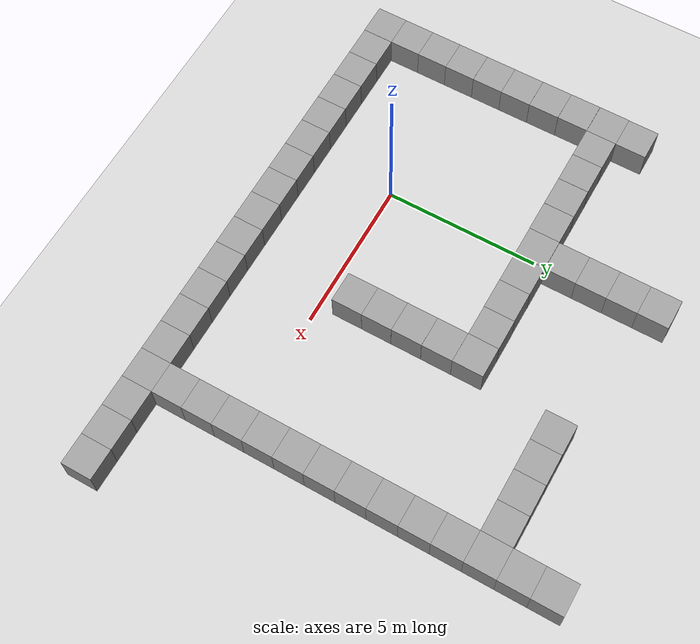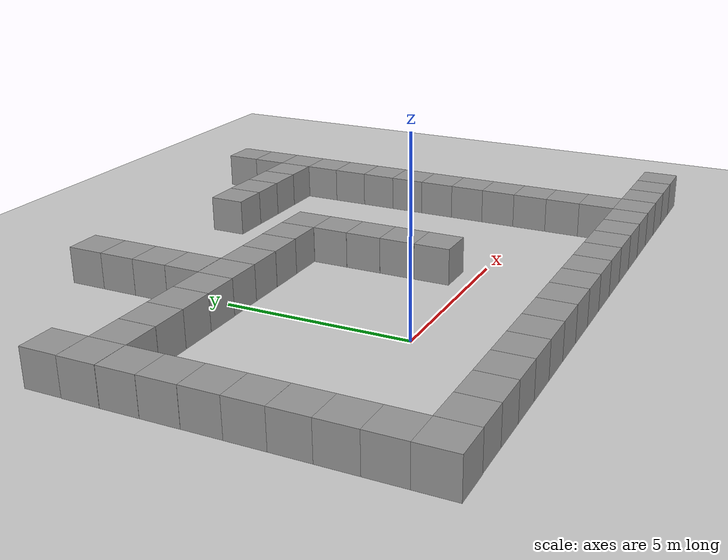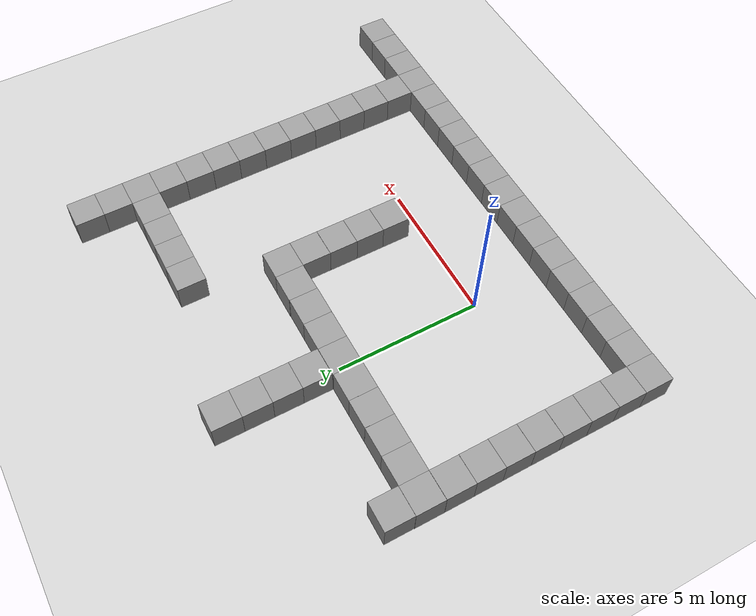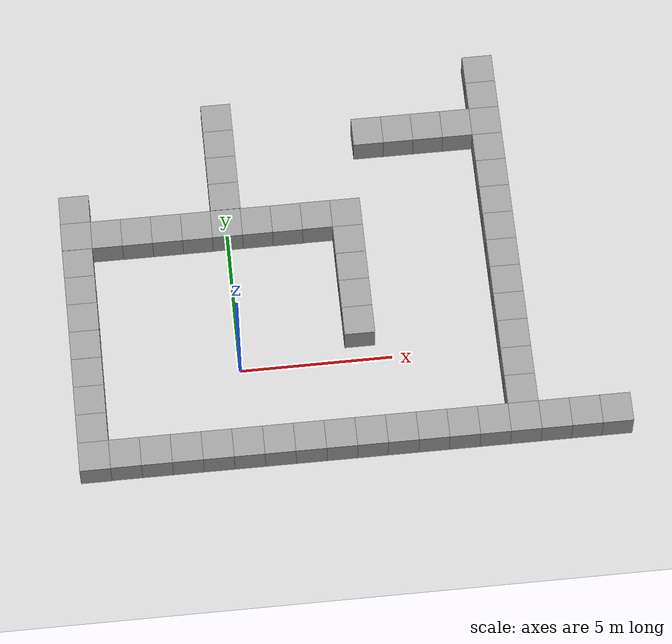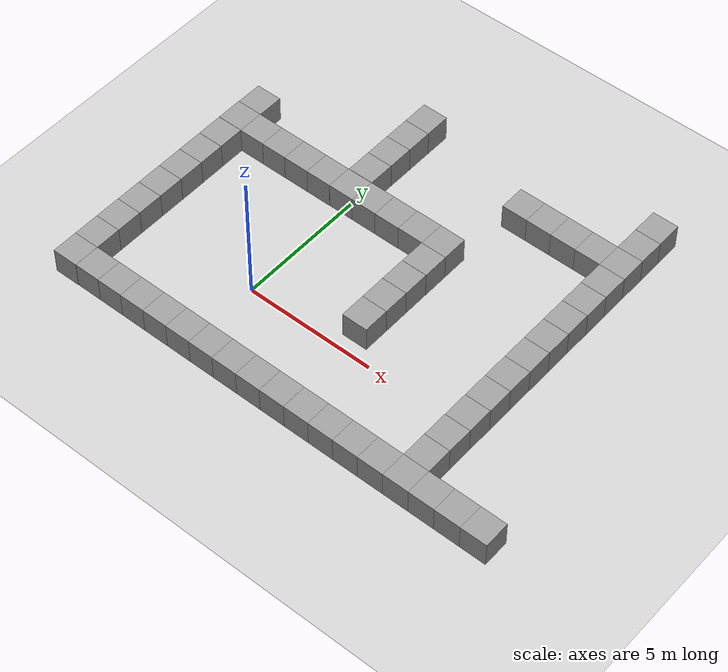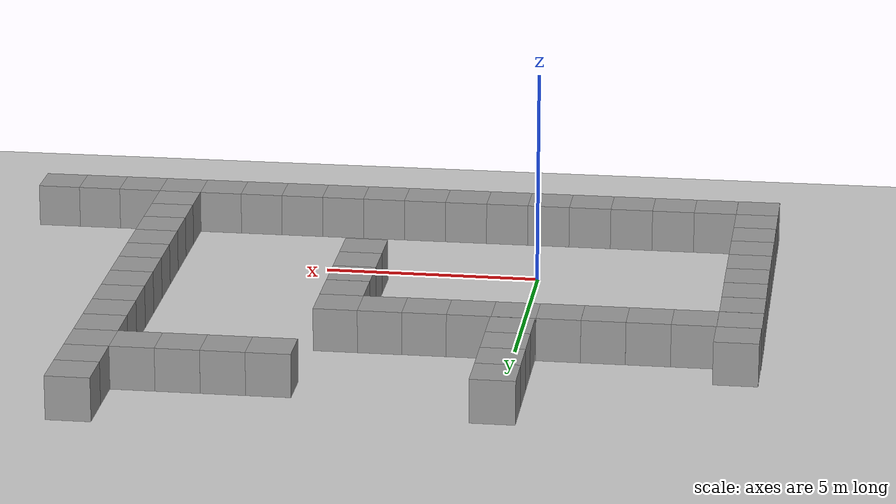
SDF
<sdf version="1.4">
 <world name="default">
  <light name="sun" type="directional">
   <pose>0 0 10 0 -0 0</pose>
   <diffuse>0.8 0.8 0.8 1</diffuse>
   <specular>0.2 0.2 0.2 1</specular>
   <attenuation>
    <range>1000</range>
    <constant>0.9</constant>
    <linear>0.01</linear>
    <quadratic>0.001</quadratic>
   </attenuation>
   <direction>-0.5 0.1 -0.9</direction>
  </light>
  <model name="ground_plane">
   <static>1</static>
   <link name="link">
    <collision name="collision">
     <geometry><plane><normal>0 0 1</normal><size>100 100</size></plane></geometry>
     <surface><friction><ode><mu>100</mu><mu2>50</mu2></ode></friction></surface>
    </collision>
    <visual name="visual">
     <cast_shadows>0</cast_shadows>
     <geometry><plane><normal>0 0 1</normal><size>100 100</size></plane></geometry>
     <material>
      <script><uri>file://media/materials/scripts/gazebo.material</uri><name>Gazebo/Grey</name></script>
     </material>
    </visual>
    <velocity_decay><linear>0</linear><angular>0</angular></velocity_decay>
   </link>
  </model>
  <physics type="ode">
   <max_step_size>0.001</max_step_size>
   <real_time_factor>1</real_time_factor>
   <real_time_update_rate>1000</real_time_update_rate>
   <gravity>0 0 -9.8</gravity>
  </physics>
  <scene><ambient>0.4 0.4 0.4 1</ambient><background>0.7 0.7 0.7 1</background><shadows>1</shadows></scene>
  <spherical_coordinates>
   <surface_model>EARTH_WGS84</surface_model>
   <latitude_deg>0</latitude_deg>
   <longitude_deg>0</longitude_deg>
   <elevation>0</elevation>
   <heading_deg>0</heading_deg>
  </spherical_coordinates>
  <model name="unit_box_1">
   <pose>-5.01661 4.99523 0.5 0 -0 0.000218</pose>
   <link name="link">
    <inertial>
     <mass>1</mass>
     <inertia><ixx>1</ixx><ixy>0</ixy><ixz>0</ixz><iyy>1</iyy><iyz>0</iyz><izz>1</izz></inertia>
    </inertial>
    <collision name="collision"><geometry><box><size>1 1 1</size></box></geometry></collision>
    <visual name="visual">
     <geometry><box><size>1 1 1</size></box></geometry>
     <material>
      <script><uri>file://media/materials/scripts/gazebo.material</uri><name>Gazebo/Grey</name></script>
     </material>
    </visual>
    <velocity_decay><linear>0</linear><angular>0</angular></velocity_decay>
   </link>
   <static>0</static>
  </model>
  <model name="unit_box_2">
   <pose>-4.01655 4.98972 0.5 0 -0 0.00031</pose>
   <link name="link">
    <inertial>
     <mass>1</mass>
     <inertia><ixx>1</ixx><ixy>0</ixy><ixz>0</ixz><iyy>1</iyy><iyz>0</iyz><izz>1</izz></inertia>
    </inertial>
    <collision name="collision"><geometry><box><size>1 1 1</size></box></geometry></collision>
    <visual name="visual">
     <geometry><box><size>1 1 1</size></box></geometry>
     <material>
      <script><uri>file://media/materials/scripts/gazebo.material</uri><name>Gazebo/Grey</name></script>
     </material>
    </visual>
    <velocity_decay><linear>0</linear><angular>0</angular></velocity_decay>
   </link>
   <static>0</static>
  </model>
  <model name="unit_box_3">
   <pose>-3.01647 4.98785 0.5 0 -0 0.000158</pose>
   <link name="link">
    <inertial>
     <mass>1</mass>
     <inertia><ixx>1</ixx><ixy>0</ixy><ixz>0</ixz><iyy>1</iyy><iyz>0</iyz><izz>1</izz></inertia>
    </inertial>
    <collision name="collision"><geometry><box><size>1 1 1</size></box></geometry></collision>
    <visual name="visual">
     <geometry><box><size>1 1 1</size></box></geometry>
     <material>
      <script><uri>file://media/materials/scripts/gazebo.material</uri><name>Gazebo/Grey</name></script>
     </material>
    </visual>
    <velocity_decay><linear>0</linear><angular>0</angular></velocity_decay>
   </link>
   <static>0</static>
  </model>
  <model name="unit_box_4">
   <pose>-2.01621 4.98917 0.5 0 0 -0.000282</pose>
   <link name="link">
    <inertial>
     <mass>1</mass>
     <inertia><ixx>1</ixx><ixy>0</ixy><ixz>0</ixz><iyy>1</iyy><iyz>0</iyz><izz>1</izz></inertia>
    </inertial>
    <collision name="collision"><geometry><box><size>1 1 1</size></box></geometry></collision>
    <visual name="visual">
     <geometry><box><size>1 1 1</size></box></geometry>
     <material>
      <script><uri>file://media/materials/scripts/gazebo.material</uri><name>Gazebo/Grey</name></script>
     </material>
    </visual>
    <velocity_decay><linear>0</linear><angular>0</angular></velocity_decay>
   </link>
   <static>0</static>
  </model>
  <model name="unit_box_5">
   <pose>-1.01609 4.98891 0.5 0 -0 -0.000471</pose>
   <link name="link">
    <inertial>
     <mass>1</mass>
     <inertia><ixx>1</ixx><ixy>0</ixy><ixz>0</ixz><iyy>1</iyy><iyz>0</iyz><izz>1</izz></inertia>
    </inertial>
    <collision name="collision"><geometry><box><size>1 1 1</size></box></geometry></collision>
    <visual name="visual">
     <geometry><box><size>1 1 1</size></box></geometry>
     <material>
      <script><uri>file://media/materials/scripts/gazebo.material</uri><name>Gazebo/Grey</name></script>
     </material>
    </visual>
    <velocity_decay><linear>0</linear><angular>0</angular></velocity_decay>
   </link>
   <static>0</static>
  </model>
  <model name="unit_box_6">
   <pose>-0.016065 4.99446 0.5 0 0 -0.000514</pose>
   <link name="link">
    <inertial>
     <mass>1</mass>
     <inertia><ixx>1</ixx><ixy>0</ixy><ixz>0</ixz><iyy>1</iyy><iyz>0</iyz><izz>1</izz></inertia>
    </inertial>
    <collision name="collision"><geometry><box><size>1 1 1</size></box></geometry></collision>
    <visual name="visual">
     <geometry><box><size>1 1 1</size></box></geometry>
     <material>
      <script><uri>file://media/materials/scripts/gazebo.material</uri><name>Gazebo/Grey</name></script>
     </material>
    </visual>
    <velocity_decay><linear>0</linear><angular>0</angular></velocity_decay>
   </link>
   <static>0</static>
  </model>
  <model name="unit_box_7">
   <pose>0.983971 4.99543 0.5 0 0 -0.000515</pose>
   <link name="link">
    <inertial>
     <mass>1</mass>
     <inertia><ixx>1</ixx><ixy>0</ixy><ixz>0</ixz><iyy>1</iyy><iyz>0</iyz><izz>1</izz></inertia>
    </inertial>
    <collision name="collision"><geometry><box><size>1 1 1</size></box></geometry></collision>
    <visual name="visual">
     <geometry><box><size>1 1 1</size></box></geometry>
     <material>
      <script><uri>file://media/materials/scripts/gazebo.material</uri><name>Gazebo/Grey</name></script>
     </material>
    </visual>
    <velocity_decay><linear>0</linear><angular>0</angular></velocity_decay>
   </link>
   <static>0</static>
  </model>
  <model name="unit_box_8">
   <pose>1.98409 4.99338 0.5 -0 -0 -0.000438</pose>
   <link name="link">
    <inertial>
     <mass>1</mass>
     <inertia><ixx>1</ixx><ixy>0</ixy><ixz>0</ixz><iyy>1</iyy><iyz>0</iyz><izz>1</izz></inertia>
    </inertial>
    <collision name="collision"><geometry><box><size>1 1 1</size></box></geometry></collision>
    <visual name="visual">
     <geometry><box><size>1 1 1</size></box></geometry>
     <material>
      <script><uri>file://media/materials/scripts/gazebo.material</uri><name>Gazebo/Grey</name></script>
     </material>
    </visual>
    <velocity_decay><linear>0</linear><angular>0</angular></velocity_decay>
   </link>
   <static>0</static>
  </model>
  <model name="unit_box_9">
   <pose>2.9843 5.00044 0.5 0 0 -0.000369</pose>
   <link name="link">
    <inertial>
     <mass>1</mass>
     <inertia><ixx>1</ixx><ixy>0</ixy><ixz>0</ixz><iyy>1</iyy><iyz>0</iyz><izz>1</izz></inertia>
    </inertial>
    <collision name="collision"><geometry><box><size>1 1 1</size></box></geometry></collision>
    <visual name="visual">
     <geometry><box><size>1 1 1</size></box></geometry>
     <material>
      <script><uri>file://media/materials/scripts/gazebo.material</uri><name>Gazebo/Grey</name></script>
     </material>
    </visual>
    <velocity_decay><linear>0</linear><angular>0</angular></velocity_decay>
   </link>
   <static>0</static>
  </model>
  <model name="unit_box_10">
   <pose>3.98435 4.99845 0.5 -0 -0 -0.000461</pose>
   <link name="link">
    <inertial>
     <mass>1</mass>
     <inertia><ixx>1</ixx><ixy>0</ixy><ixz>0</ixz><iyy>1</iyy><iyz>0</iyz><izz>1</izz></inertia>
    </inertial>
    <collision name="collision"><geometry><box><size>1 1 1</size></box></geometry></collision>
    <visual name="visual">
     <geometry><box><size>1 1 1</size></box></geometry>
     <material>
      <script><uri>file://media/materials/scripts/gazebo.material</uri><name>Gazebo/Grey</name></script>
     </material>
    </visual>
    <velocity_decay><linear>0</linear><angular>0</angular></velocity_decay>
   </link>
   <static>0</static>
  </model>
  <model name="unit_box_11">
   <pose>3.98561 3.99843 0.5 0 0 -0.00046</pose>
   <link name="link">
    <inertial>
     <mass>1</mass>
     <inertia><ixx>1</ixx><ixy>0</ixy><ixz>0</ixz><iyy>1</iyy><iyz>0</iyz><izz>1</izz></inertia>
    </inertial>
    <collision name="collision"><geometry><box><size>1 1 1</size></box></geometry></collision>
    <visual name="visual">
     <geometry><box><size>1 1 1</size></box></geometry>
     <material>
      <script><uri>file://media/materials/scripts/gazebo.material</uri><name>Gazebo/Grey</name></script>
     </material>
    </visual>
    <velocity_decay><linear>0</linear><angular>0</angular></velocity_decay>
   </link>
   <static>0</static>
  </model>
  <model name="unit_box_12">
   <pose>3.98357 2.99635 0.5 0 -0 -0.000581</pose>
   <link name="link">
    <inertial>
     <mass>1</mass>
     <inertia><ixx>1</ixx><ixy>0</ixy><ixz>0</ixz><iyy>1</iyy><iyz>0</iyz><izz>1</izz></inertia>
    </inertial>
    <collision name="collision"><geometry><box><size>1 1 1</size></box></geometry></collision>
    <visual name="visual">
     <geometry><box><size>1 1 1</size></box></geometry>
     <material>
      <script><uri>file://media/materials/scripts/gazebo.material</uri><name>Gazebo/Grey</name></script>
     </material>
    </visual>
    <velocity_decay><linear>0</linear><angular>0</angular></velocity_decay>
   </link>
   <static>0</static>
  </model>
  <model name="unit_box_13">
   <pose>3.98484 1.99635 0.5 0 -0 -0.000581</pose>
   <link name="link">
    <inertial>
     <mass>1</mass>
     <inertia><ixx>1</ixx><ixy>0</ixy><ixz>0</ixz><iyy>1</iyy><iyz>0</iyz><izz>1</izz></inertia>
    </inertial>
    <collision name="collision"><geometry><box><size>1 1 1</size></box></geometry></collision>
    <visual name="visual">
     <geometry><box><size>1 1 1</size></box></geometry>
     <material>
      <script><uri>file://media/materials/scripts/gazebo.material</uri><name>Gazebo/Grey</name></script>
     </material>
    </visual>
    <velocity_decay><linear>0</linear><angular>0</angular></velocity_decay>
   </link>
   <static>0</static>
  </model>
  <model name="unit_box_14">
   <pose>3.98502 0.996332 0.5 0 -1e-06 -0.000611</pose>
   <link name="link">
    <inertial>
     <mass>1</mass>
     <inertia><ixx>1</ixx><ixy>0</ixy><ixz>0</ixz><iyy>1</iyy><iyz>0</iyz><izz>1</izz></inertia>
    </inertial>
    <collision name="collision"><geometry><box><size>1 1 1</size></box></geometry></collision>
    <visual name="visual">
     <geometry><box><size>1 1 1</size></box></geometry>
     <material>
      <script><uri>file://media/materials/scripts/gazebo.material</uri><name>Gazebo/Grey</name></script>
     </material>
    </visual>
    <velocity_decay><linear>0</linear><angular>0</angular></velocity_decay>
   </link>
   <static>0</static>
  </model>
  <model name="unit_box_15">
   <pose>-0.999929 -2.99994 0.5 -0 -0 -4.9e-05</pose>
   <link name="link">
    <inertial>
     <mass>1</mass>
     <inertia><ixx>1</ixx><ixy>0</ixy><ixz>0</ixz><iyy>1</iyy><iyz>0</iyz><izz>1</izz></inertia>
    </inertial>
    <collision name="collision"><geometry><box><size>1 1 1</size></box></geometry></collision>
    <visual name="visual">
     <geometry><box><size>1 1 1</size></box></geometry>
     <material>
      <script><uri>file://media/materials/scripts/gazebo.material</uri><name>Gazebo/Grey</name></script>
     </material>
    </visual>
    <velocity_decay><linear>0</linear><angular>0</angular></velocity_decay>
   </link>
   <static>0</static>
  </model>
  <model name="unit_box_16">
   <pose>7.5e-05 -2.99995 0.5 0 0 -4.4e-05</pose>
   <link name="link">
    <inertial>
     <mass>1</mass>
     <inertia><ixx>1</ixx><ixy>0</ixy><ixz>0</ixz><iyy>1</iyy><iyz>0</iyz><izz>1</izz></inertia>
    </inertial>
    <collision name="collision"><geometry><box><size>1 1 1</size></box></geometry></collision>
    <visual name="visual">
     <geometry><box><size>1 1 1</size></box></geometry>
     <material>
      <script><uri>file://media/materials/scripts/gazebo.material</uri><name>Gazebo/Grey</name></script>
     </material>
    </visual>
    <velocity_decay><linear>0</linear><angular>0</angular></velocity_decay>
   </link>
   <static>0</static>
  </model>
  <model name="unit_box_17">
   <pose>1.00008 -2.99995 0.5 0 -0 -2.8e-05</pose>
   <link name="link">
    <inertial>
     <mass>1</mass>
     <inertia><ixx>1</ixx><ixy>0</ixy><ixz>0</ixz><iyy>1</iyy><iyz>0</iyz><izz>1</izz></inertia>
    </inertial>
    <collision name="collision"><geometry><box><size>1 1 1</size></box></geometry></collision>
    <visual name="visual">
     <geometry><box><size>1 1 1</size></box></geometry>
     <material>
      <script><uri>file://media/materials/scripts/gazebo.material</uri><name>Gazebo/Grey</name></script>
     </material>
    </visual>
    <velocity_decay><linear>0</linear><angular>0</angular></velocity_decay>
   </link>
   <static>0</static>
  </model>
  <model name="unit_box_18">
   <pose>2.00009 -2.99997 0.5 -0 -0 -2.5e-05</pose>
   <link name="link">
    <inertial>
     <mass>1</mass>
     <inertia><ixx>1</ixx><ixy>0</ixy><ixz>0</ixz><iyy>1</iyy><iyz>0</iyz><izz>1</izz></inertia>
    </inertial>
    <collision name="collision"><geometry><box><size>1 1 1</size></box></geometry></collision>
    <visual name="visual">
     <geometry><box><size>1 1 1</size></box></geometry>
     <material>
      <script><uri>file://media/materials/scripts/gazebo.material</uri><name>Gazebo/Grey</name></script>
     </material>
    </visual>
    <velocity_decay><linear>0</linear><angular>0</angular></velocity_decay>
   </link>
   <static>0</static>
  </model>
  <model name="unit_box_19">
   <pose>3.00009 -2.99992 0.5 0 0 -2.2e-05</pose>
   <link name="link">
    <inertial>
     <mass>1</mass>
     <inertia><ixx>1</ixx><ixy>0</ixy><ixz>0</ixz><iyy>1</iyy><iyz>0</iyz><izz>1</izz></inertia>
    </inertial>
    <collision name="collision"><geometry><box><size>1 1 1</size></box></geometry></collision>
    <visual name="visual">
     <geometry><box><size>1 1 1</size></box></geometry>
     <material>
      <script><uri>file://media/materials/scripts/gazebo.material</uri><name>Gazebo/Grey</name></script>
     </material>
    </visual>
    <velocity_decay><linear>0</linear><angular>0</angular></velocity_decay>
   </link>
   <static>0</static>
  </model>
  <model name="unit_box_20">
   <pose>4.00009 -2.99994 0.5 0 0 -2.3e-05</pose>
   <link name="link">
    <inertial>
     <mass>1</mass>
     <inertia><ixx>1</ixx><ixy>0</ixy><ixz>0</ixz><iyy>1</iyy><iyz>0</iyz><izz>1</izz></inertia>
    </inertial>
    <collision name="collision"><geometry><box><size>1 1 1</size></box></geometry></collision>
    <visual name="visual">
     <geometry><box><size>1 1 1</size></box></geometry>
     <material>
      <script><uri>file://media/materials/scripts/gazebo.material</uri><name>Gazebo/Grey</name></script>
     </material>
    </visual>
    <velocity_decay><linear>0</linear><angular>0</angular></velocity_decay>
   </link>
   <static>0</static>
  </model>
  <model name="unit_box_21">
   <pose>5.00009 -2.99994 0.5 -0 -0 -1.7e-05</pose>
   <link name="link">
    <inertial>
     <mass>1</mass>
     <inertia><ixx>1</ixx><ixy>0</ixy><ixz>0</ixz><iyy>1</iyy><iyz>0</iyz><izz>1</izz></inertia>
    </inertial>
    <collision name="collision"><geometry><box><size>1 1 1</size></box></geometry></collision>
    <visual name="visual">
     <geometry><box><size>1 1 1</size></box></geometry>
     <material>
      <script><uri>file://media/materials/scripts/gazebo.material</uri><name>Gazebo/Grey</name></script>
     </material>
    </visual>
    <velocity_decay><linear>0</linear><angular>0</angular></velocity_decay>
   </link>
   <static>0</static>
  </model>
  <model name="unit_box_22">
   <pose>6.00009 -2.99998 0.5 0 0 -1.7e-05</pose>
   <link name="link">
    <inertial>
     <mass>1</mass>
     <inertia><ixx>1</ixx><ixy>0</ixy><ixz>0</ixz><iyy>1</iyy><iyz>0</iyz><izz>1</izz></inertia>
    </inertial>
    <collision name="collision"><geometry><box><size>1 1 1</size></box></geometry></collision>
    <visual name="visual">
     <geometry><box><size>1 1 1</size></box></geometry>
     <material>
      <script><uri>file://media/materials/scripts/gazebo.material</uri><name>Gazebo/Grey</name></script>
     </material>
    </visual>
    <velocity_decay><linear>0</linear><angular>0</angular></velocity_decay>
   </link>
   <static>0</static>
  </model>
  <model name="unit_box_23">
   <pose>7.00009 -2.99996 0.5 0 -0 -1.7e-05</pose>
   <link name="link">
    <inertial>
     <mass>1</mass>
     <inertia><ixx>1</ixx><ixy>0</ixy><ixz>0</ixz><iyy>1</iyy><iyz>0</iyz><izz>1</izz></inertia>
    </inertial>
    <collision name="collision"><geometry><box><size>1 1 1</size></box></geometry></collision>
    <visual name="visual">
     <geometry><box><size>1 1 1</size></box></geometry>
     <material>
      <script><uri>file://media/materials/scripts/gazebo.material</uri><name>Gazebo/Grey</name></script>
     </material>
    </visual>
    <velocity_decay><linear>0</linear><angular>0</angular></velocity_decay>
   </link>
   <static>0</static>
  </model>
  <model name="unit_box_24">
   <pose>8.00009 -3 0.5 0 -0 -1.5e-05</pose>
   <link name="link">
    <inertial>
     <mass>1</mass>
     <inertia><ixx>1</ixx><ixy>0</ixy><ixz>0</ixz><iyy>1</iyy><iyz>0</iyz><izz>1</izz></inertia>
    </inertial>
    <collision name="collision"><geometry><box><size>1 1 1</size></box></geometry></collision>
    <visual name="visual">
     <geometry><box><size>1 1 1</size></box></geometry>
     <material>
      <script><uri>file://media/materials/scripts/gazebo.material</uri><name>Gazebo/Grey</name></script>
     </material>
    </visual>
    <velocity_decay><linear>0</linear><angular>0</angular></velocity_decay>
   </link>
   <static>0</static>
  </model>
  <model name="unit_box_25">
   <pose>9.0001 -3.00001 0.5 -0 -0 -1.3e-05</pose>
   <link name="link">
    <inertial>
     <mass>1</mass>
     <inertia><ixx>1</ixx><ixy>0</ixy><ixz>0</ixz><iyy>1</iyy><iyz>0</iyz><izz>1</izz></inertia>
    </inertial>
    <collision name="collision"><geometry><box><size>1 1 1</size></box></geometry></collision>
    <visual name="visual">
     <geometry><box><size>1 1 1</size></box></geometry>
     <material>
      <script><uri>file://media/materials/scripts/gazebo.material</uri><name>Gazebo/Grey</name></script>
     </material>
    </visual>
    <velocity_decay><linear>0</linear><angular>0</angular></velocity_decay>
   </link>
   <static>0</static>
  </model>
  <model name="unit_box_26">
   <pose>9.00001 -2.00001 0.5 0 -0 -1e-05</pose>
   <link name="link">
    <inertial>
     <mass>1</mass>
     <inertia><ixx>1</ixx><ixy>0</ixy><ixz>0</ixz><iyy>1</iyy><iyz>0</iyz><izz>1</izz></inertia>
    </inertial>
    <collision name="collision"><geometry><box><size>1 1 1</size></box></geometry></collision>
    <visual name="visual">
     <geometry><box><size>1 1 1</size></box></geometry>
     <material>
      <script><uri>file://media/materials/scripts/gazebo.material</uri><name>Gazebo/Grey</name></script>
     </material>
    </visual>
    <velocity_decay><linear>0</linear><angular>0</angular></velocity_decay>
   </link>
   <static>0</static>
  </model>
  <model name="unit_box_27">
   <pose>8.99999 -1.00001 0.5 0 0 -1e-05</pose>
   <link name="link">
    <inertial>
     <mass>1</mass>
     <inertia><ixx>1</ixx><ixy>0</ixy><ixz>0</ixz><iyy>1</iyy><iyz>0</iyz><izz>1</izz></inertia>
    </inertial>
    <collision name="collision"><geometry><box><size>1 1 1</size></box></geometry></collision>
    <visual name="visual">
     <geometry><box><size>1 1 1</size></box></geometry>
     <material>
      <script><uri>file://media/materials/scripts/gazebo.material</uri><name>Gazebo/Grey</name></script>
     </material>
    </visual>
    <velocity_decay><linear>0</linear><angular>0</angular></velocity_decay>
   </link>
   <static>0</static>
  </model>
  <model name="unit_box_28">
   <pose>8.99997 -8e-06 0.5 0 0 -9e-06</pose>
   <link name="link">
    <inertial>
     <mass>1</mass>
     <inertia><ixx>1</ixx><ixy>0</ixy><ixz>0</ixz><iyy>1</iyy><iyz>0</iyz><izz>1</izz></inertia>
    </inertial>
    <collision name="collision"><geometry><box><size>1 1 1</size></box></geometry></collision>
    <visual name="visual">
     <geometry><box><size>1 1 1</size></box></geometry>
     <material>
      <script><uri>file://media/materials/scripts/gazebo.material</uri><name>Gazebo/Grey</name></script>
     </material>
    </visual>
    <velocity_decay><linear>0</linear><angular>0</angular></velocity_decay>
   </link>
   <static>0</static>
  </model>
  <model name="unit_box_29">
   <pose>8.99997 0.999996 0.5 0 0 -7e-06</pose>
   <link name="link">
    <inertial>
     <mass>1</mass>
     <inertia><ixx>1</ixx><ixy>0</ixy><ixz>0</ixz><iyy>1</iyy><iyz>0</iyz><izz>1</izz></inertia>
    </inertial>
    <collision name="collision"><geometry><box><size>1 1 1</size></box></geometry></collision>
    <visual name="visual">
     <geometry><box><size>1 1 1</size></box></geometry>
     <material>
      <script><uri>file://media/materials/scripts/gazebo.material</uri><name>Gazebo/Grey</name></script>
     </material>
    </visual>
    <velocity_decay><linear>0</linear><angular>0</angular></velocity_decay>
   </link>
   <static>0</static>
  </model>
  <model name="unit_box_30">
   <pose>8.99998 2 0.5 0 0 -7e-06</pose>
   <link name="link">
    <inertial>
     <mass>1</mass>
     <inertia><ixx>1</ixx><ixy>0</ixy><ixz>0</ixz><iyy>1</iyy><iyz>0</iyz><izz>1</izz></inertia>
    </inertial>
    <collision name="collision"><geometry><box><size>1 1 1</size></box></geometry></collision>
    <visual name="visual">
     <geometry><box><size>1 1 1</size></box></geometry>
     <material>
      <script><uri>file://media/materials/scripts/gazebo.material</uri><name>Gazebo/Grey</name></script>
     </material>
    </visual>
    <velocity_decay><linear>0</linear><angular>0</angular></velocity_decay>
   </link>
   <static>0</static>
  </model>
  <model name="unit_box_31">
   <pose>8.99998 3 0.5 0 -0 -5e-06</pose>
   <link name="link">
    <inertial>
     <mass>1</mass>
     <inertia><ixx>1</ixx><ixy>0</ixy><ixz>0</ixz><iyy>1</iyy><iyz>0</iyz><izz>1</izz></inertia>
    </inertial>
    <collision name="collision"><geometry><box><size>1 1 1</size></box></geometry></collision>
    <visual name="visual">
     <geometry><box><size>1 1 1</size></box></geometry>
     <material>
      <script><uri>file://media/materials/scripts/gazebo.material</uri><name>Gazebo/Grey</name></script>
     </material>
    </visual>
    <velocity_decay><linear>0</linear><angular>0</angular></velocity_decay>
   </link>
   <static>0</static>
  </model>
  <model name="unit_box_32">
   <pose>8.99999 4 0.5 -0 -0 -5e-06</pose>
   <link name="link">
    <inertial>
     <mass>1</mass>
     <inertia><ixx>1</ixx><ixy>0</ixy><ixz>0</ixz><iyy>1</iyy><iyz>0</iyz><izz>1</izz></inertia>
    </inertial>
    <collision name="collision"><geometry><box><size>1 1 1</size></box></geometry></collision>
    <visual name="visual">
     <geometry><box><size>1 1 1</size></box></geometry>
     <material>
      <script><uri>file://media/materials/scripts/gazebo.material</uri><name>Gazebo/Grey</name></script>
     </material>
    </visual>
    <velocity_decay><linear>0</linear><angular>0</angular></velocity_decay>
   </link>
   <static>0</static>
  </model>
  <model name="unit_box_33">
   <pose>9.00001 5 0.5 0 -0 -4e-06</pose>
   <link name="link">
    <inertial>
     <mass>1</mass>
     <inertia><ixx>1</ixx><ixy>0</ixy><ixz>0</ixz><iyy>1</iyy><iyz>0</iyz><izz>1</izz></inertia>
    </inertial>
    <collision name="collision"><geometry><box><size>1 1 1</size></box></geometry></collision>
    <visual name="visual">
     <geometry><box><size>1 1 1</size></box></geometry>
     <material>
      <script><uri>file://media/materials/scripts/gazebo.material</uri><name>Gazebo/Grey</name></script>
     </material>
    </visual>
    <velocity_decay><linear>0</linear><angular>0</angular></velocity_decay>
   </link>
   <static>0</static>
  </model>
  <model name="unit_box_34">
   <pose>9.00001 6 0.5 0 -0 -4e-06</pose>
   <link name="link">
    <inertial>
     <mass>1</mass>
     <inertia><ixx>1</ixx><ixy>0</ixy><ixz>0</ixz><iyy>1</iyy><iyz>0</iyz><izz>1</izz></inertia>
    </inertial>
    <collision name="collision"><geometry><box><size>1 1 1</size></box></geometry></collision>
    <visual name="visual">
     <geometry><box><size>1 1 1</size></box></geometry>
     <material>
      <script><uri>file://media/materials/scripts/gazebo.material</uri><name>Gazebo/Grey</name></script>
     </material>
    </visual>
    <velocity_decay><linear>0</linear><angular>0</angular></velocity_decay>
   </link>
   <static>0</static>
  </model>
  <model name="unit_box_35">
   <pose>10.0001 -2.99997 0.5 0 0 -1.3e-05</pose>
   <link name="link">
    <inertial>
     <mass>1</mass>
     <inertia><ixx>1</ixx><ixy>0</ixy><ixz>0</ixz><iyy>1</iyy><iyz>0</iyz><izz>1</izz></inertia>
    </inertial>
    <collision name="collision"><geometry><box><size>1 1 1</size></box></geometry></collision>
    <visual name="visual">
     <geometry><box><size>1 1 1</size></box></geometry>
     <material>
      <script><uri>file://media/materials/scripts/gazebo.material</uri><name>Gazebo/Grey</name></script>
     </material>
    </visual>
    <velocity_decay><linear>0</linear><angular>0</angular></velocity_decay>
   </link>
   <static>0</static>
  </model>
  <model name="unit_box_36">
   <pose>11.0001 -2.99998 0.5 0 0 -1.2e-05</pose>
   <link name="link">
    <inertial>
     <mass>1</mass>
     <inertia><ixx>1</ixx><ixy>0</ixy><ixz>0</ixz><iyy>1</iyy><iyz>0</iyz><izz>1</izz></inertia>
    </inertial>
    <collision name="collision"><geometry><box><size>1 1 1</size></box></geometry></collision>
    <visual name="visual">
     <geometry><box><size>1 1 1</size></box></geometry>
     <material>
      <script><uri>file://media/materials/scripts/gazebo.material</uri><name>Gazebo/Grey</name></script>
     </material>
    </visual>
    <velocity_decay><linear>0</linear><angular>0</angular></velocity_decay>
   </link>
   <static>0</static>
  </model>
  <model name="unit_box_37">
   <pose>12.0001 -2.99999 0.5 0 0 -1.1e-05</pose>
   <link name="link">
    <inertial>
     <mass>1</mass>
     <inertia><ixx>1</ixx><ixy>0</ixy><ixz>0</ixz><iyy>1</iyy><iyz>0</iyz><izz>1</izz></inertia>
    </inertial>
    <collision name="collision"><geometry><box><size>1 1 1</size></box></geometry></collision>
    <visual name="visual">
     <geometry><box><size>1 1 1</size></box></geometry>
     <material>
      <script><uri>file://media/materials/scripts/gazebo.material</uri><name>Gazebo/Grey</name></script>
     </material>
    </visual>
    <velocity_decay><linear>0</linear><angular>0</angular></velocity_decay>
   </link>
   <static>0</static>
  </model>
  <model name="unit_box_38">
   <pose>9.00001 7 0.5 0 -0 -3e-06</pose>
   <link name="link">
    <inertial>
     <mass>1</mass>
     <inertia><ixx>1</ixx><ixy>0</ixy><ixz>0</ixz><iyy>1</iyy><iyz>0</iyz><izz>1</izz></inertia>
    </inertial>
    <collision name="collision"><geometry><box><size>1 1 1</size></box></geometry></collision>
    <visual name="visual">
     <geometry><box><size>1 1 1</size></box></geometry>
     <material>
      <script><uri>file://media/materials/scripts/gazebo.material</uri><name>Gazebo/Grey</name></script>
     </material>
    </visual>
    <velocity_decay><linear>0</linear><angular>0</angular></velocity_decay>
   </link>
   <static>0</static>
  </model>
  <model name="unit_box_39">
   <pose>9 8 0.5 0 0 -3e-06</pose>
   <link name="link">
    <inertial>
     <mass>1</mass>
     <inertia><ixx>1</ixx><ixy>0</ixy><ixz>0</ixz><iyy>1</iyy><iyz>0</iyz><izz>1</izz></inertia>
    </inertial>
    <collision name="collision"><geometry><box><size>1 1 1</size></box></geometry></collision>
    <visual name="visual">
     <geometry><box><size>1 1 1</size></box></geometry>
     <material>
      <script><uri>file://media/materials/scripts/gazebo.material</uri><name>Gazebo/Grey</name></script>
     </material>
    </visual>
    <velocity_decay><linear>0</linear><angular>0</angular></velocity_decay>
   </link>
   <static>0</static>
  </model>
  <model name="unit_box_40">
   <pose>-5.01454 3.99136 0.5 0 -0 0.003743</pose>
   <link name="link">
    <inertial>
     <mass>1</mass>
     <inertia><ixx>1</ixx><ixy>0</ixy><ixz>0</ixz><iyy>1</iyy><iyz>0</iyz><izz>1</izz></inertia>
    </inertial>
    <collision name="collision"><geometry><box><size>1 1 1</size></box></geometry></collision>
    <visual name="visual">
     <geometry><box><size>1 1 1</size></box></geometry>
     <material>
      <script><uri>file://media/materials/scripts/gazebo.material</uri><name>Gazebo/Grey</name></script>
     </material>
    </visual>
    <velocity_decay><linear>0</linear><angular>0</angular></velocity_decay>
   </link>
   <static>0</static>
  </model>
  <model name="unit_box_41">
   <pose>-5.00802 2.99084 0.5 0 -0 0.00271</pose>
   <link name="link">
    <inertial>
     <mass>1</mass>
     <inertia><ixx>1</ixx><ixy>0</ixy><ixz>0</ixz><iyy>1</iyy><iyz>0</iyz><izz>1</izz></inertia>
    </inertial>
    <collision name="collision"><geometry><box><size>1 1 1</size></box></geometry></collision>
    <visual name="visual">
     <geometry><box><size>1 1 1</size></box></geometry>
     <material>
      <script><uri>file://media/materials/scripts/gazebo.material</uri><name>Gazebo/Grey</name></script>
     </material>
    </visual>
    <velocity_decay><linear>0</linear><angular>0</angular></velocity_decay>
   </link>
   <static>0</static>
  </model>
  <model name="unit_box_42">
   <pose>-5.00203 1.99061 0.5 0 -0 0.002237</pose>
   <link name="link">
    <inertial>
     <mass>1</mass>
     <inertia><ixx>1</ixx><ixy>0</ixy><ixz>0</ixz><iyy>1</iyy><iyz>0</iyz><izz>1</izz></inertia>
    </inertial>
    <collision name="collision"><geometry><box><size>1 1 1</size></box></geometry></collision>
    <visual name="visual">
     <geometry><box><size>1 1 1</size></box></geometry>
     <material>
      <script><uri>file://media/materials/scripts/gazebo.material</uri><name>Gazebo/Grey</name></script>
     </material>
    </visual>
    <velocity_decay><linear>0</linear><angular>0</angular></velocity_decay>
   </link>
   <static>0</static>
  </model>
  <model name="unit_box_43">
   <pose>-5.00167 0.990437 0.5 0 -0 0.00189</pose>
   <link name="link">
    <inertial>
     <mass>1</mass>
     <inertia><ixx>1</ixx><ixy>0</ixy><ixz>0</ixz><iyy>1</iyy><iyz>0</iyz><izz>1</izz></inertia>
    </inertial>
    <collision name="collision"><geometry><box><size>1 1 1</size></box></geometry></collision>
    <visual name="visual">
     <geometry><box><size>1 1 1</size></box></geometry>
     <material>
      <script><uri>file://media/materials/scripts/gazebo.material</uri><name>Gazebo/Grey</name></script>
     </material>
    </visual>
    <velocity_decay><linear>0</linear><angular>0</angular></velocity_decay>
   </link>
   <static>0</static>
  </model>
  <model name="unit_box_44">
   <pose>-5.00016 -0.009991 0.5 0 -0 0.001036</pose>
   <link name="link">
    <inertial>
     <mass>1</mass>
     <inertia><ixx>1</ixx><ixy>0</ixy><ixz>0</ixz><iyy>1</iyy><iyz>0</iyz><izz>1</izz></inertia>
    </inertial>
    <collision name="collision"><geometry><box><size>1 1 1</size></box></geometry></collision>
    <visual name="visual">
     <geometry><box><size>1 1 1</size></box></geometry>
     <material>
      <script><uri>file://media/materials/scripts/gazebo.material</uri><name>Gazebo/Grey</name></script>
     </material>
    </visual>
    <velocity_decay><linear>0</linear><angular>0</angular></velocity_decay>
   </link>
   <static>0</static>
  </model>
  <model name="unit_box_45">
   <pose>-5.0005 -1.01012 0.5 0 -0 0.000785</pose>
   <link name="link">
    <inertial>
     <mass>1</mass>
     <inertia><ixx>1</ixx><ixy>0</ixy><ixz>0</ixz><iyy>1</iyy><iyz>0</iyz><izz>1</izz></inertia>
    </inertial>
    <collision name="collision"><geometry><box><size>1 1 1</size></box></geometry></collision>
    <visual name="visual">
     <geometry><box><size>1 1 1</size></box></geometry>
     <material>
      <script><uri>file://media/materials/scripts/gazebo.material</uri><name>Gazebo/Grey</name></script>
     </material>
    </visual>
    <velocity_decay><linear>0</linear><angular>0</angular></velocity_decay>
   </link>
   <static>0</static>
  </model>
  <model name="unit_box_46">
   <pose>-5.0003 -2.01013 0.5 0 -0 0.000761</pose>
   <link name="link">
    <inertial>
     <mass>1</mass>
     <inertia><ixx>1</ixx><ixy>0</ixy><ixz>0</ixz><iyy>1</iyy><iyz>0</iyz><izz>1</izz></inertia>
    </inertial>
    <collision name="collision"><geometry><box><size>1 1 1</size></box></geometry></collision>
    <visual name="visual">
     <geometry><box><size>1 1 1</size></box></geometry>
     <material>
      <script><uri>file://media/materials/scripts/gazebo.material</uri><name>Gazebo/Grey</name></script>
     </material>
    </visual>
    <velocity_decay><linear>0</linear><angular>0</angular></velocity_decay>
   </link>
   <static>0</static>
  </model>
  <model name="unit_box_47">
   <pose>-5.00056 -3.01014 0.5 0 -0 0.000744</pose>
   <link name="link">
    <inertial>
     <mass>1</mass>
     <inertia><ixx>1</ixx><ixy>0</ixy><ixz>0</ixz><iyy>1</iyy><iyz>0</iyz><izz>1</izz></inertia>
    </inertial>
    <collision name="collision"><geometry><box><size>1 1 1</size></box></geometry></collision>
    <visual name="visual">
     <geometry><box><size>1 1 1</size></box></geometry>
     <material>
      <script><uri>file://media/materials/scripts/gazebo.material</uri><name>Gazebo/Grey</name></script>
     </material>
    </visual>
    <velocity_decay><linear>0</linear><angular>0</angular></velocity_decay>
   </link>
   <static>0</static>
  </model>
  <model name="unit_box_48">
   <pose>-3.99997 -3.00036 0.5 0 0 -0.000135</pose>
   <link name="link">
    <inertial>
     <mass>1</mass>
     <inertia><ixx>1</ixx><ixy>0</ixy><ixz>0</ixz><iyy>1</iyy><iyz>0</iyz><izz>1</izz></inertia>
    </inertial>
    <collision name="collision"><geometry><box><size>1 1 1</size></box></geometry></collision>
    <visual name="visual">
     <geometry><box><size>1 1 1</size></box></geometry>
     <material>
      <script><uri>file://media/materials/scripts/gazebo.material</uri><name>Gazebo/Grey</name></script>
     </material>
    </visual>
    <velocity_decay><linear>0</linear><angular>0</angular></velocity_decay>
   </link>
   <static>0</static>
  </model>
  <model name="unit_box_49">
   <pose>-2.99995 -3.00006 0.5 -0 -0 -8e-05</pose>
   <link name="link">
    <inertial>
     <mass>1</mass>
     <inertia><ixx>1</ixx><ixy>0</ixy><ixz>0</ixz><iyy>1</iyy><iyz>0</iyz><izz>1</izz></inertia>
    </inertial>
    <collision name="collision"><geometry><box><size>1 1 1</size></box></geometry></collision>
    <visual name="visual">
     <geometry><box><size>1 1 1</size></box></geometry>
     <material>
      <script><uri>file://media/materials/scripts/gazebo.material</uri><name>Gazebo/Grey</name></script>
     </material>
    </visual>
    <velocity_decay><linear>0</linear><angular>0</angular></velocity_decay>
   </link>
   <static>0</static>
  </model>
  <model name="unit_box_50">
   <pose>-1.99994 -3.00003 0.5 0 -0 -6.3e-05</pose>
   <link name="link">
    <inertial>
     <mass>1</mass>
     <inertia><ixx>1</ixx><ixy>0</ixy><ixz>0</ixz><iyy>1</iyy><iyz>0</iyz><izz>1</izz></inertia>
    </inertial>
    <collision name="collision"><geometry><box><size>1 1 1</size></box></geometry></collision>
    <visual name="visual">
     <geometry><box><size>1 1 1</size></box></geometry>
     <material>
      <script><uri>file://media/materials/scripts/gazebo.material</uri><name>Gazebo/Grey</name></script>
     </material>
    </visual>
    <velocity_decay><linear>0</linear><angular>0</angular></velocity_decay>
   </link>
   <static>0</static>
  </model>
  <model name="unit_box_51">
   <pose>8 8 0.5 0 0 -3e-06</pose>
   <link name="link">
    <inertial>
     <mass>1</mass>
     <inertia><ixx>1</ixx><ixy>0</ixy><ixz>0</ixz><iyy>1</iyy><iyz>0</iyz><izz>1</izz></inertia>
    </inertial>
    <collision name="collision"><geometry><box><size>1 1 1</size></box></geometry></collision>
    <visual name="visual">
     <geometry><box><size>1 1 1</size></box></geometry>
     <material>
      <script><uri>file://media/materials/scripts/gazebo.material</uri><name>Gazebo/Grey</name></script>
     </material>
    </visual>
    <velocity_decay><linear>0</linear><angular>0</angular></velocity_decay>
   </link>
   <static>0</static>
  </model>
  <model name="unit_box_52">
   <pose>7 8.00001 0.5 0 0 -4e-06</pose>
   <link name="link">
    <inertial>
     <mass>1</mass>
     <inertia><ixx>1</ixx><ixy>0</ixy><ixz>0</ixz><iyy>1</iyy><iyz>0</iyz><izz>1</izz></inertia>
    </inertial>
    <collision name="collision"><geometry><box><size>1 1 1</size></box></geometry></collision>
    <visual name="visual">
     <geometry><box><size>1 1 1</size></box></geometry>
     <material>
      <script><uri>file://media/materials/scripts/gazebo.material</uri><name>Gazebo/Grey</name></script>
     </material>
    </visual>
    <velocity_decay><linear>0</linear><angular>0</angular></velocity_decay>
   </link>
   <static>0</static>
  </model>
  <model name="unit_box_53">
   <pose>5.99999 8 0.5 0 0 -4e-06</pose>
   <link name="link">
    <inertial>
     <mass>1</mass>
     <inertia><ixx>1</ixx><ixy>0</ixy><ixz>0</ixz><iyy>1</iyy><iyz>0</iyz><izz>1</izz></inertia>
    </inertial>
    <collision name="collision"><geometry><box><size>1 1 1</size></box></geometry></collision>
    <visual name="visual">
     <geometry><box><size>1 1 1</size></box></geometry>
     <material>
      <script><uri>file://media/materials/scripts/gazebo.material</uri><name>Gazebo/Grey</name></script>
     </material>
    </visual>
    <velocity_decay><linear>0</linear><angular>0</angular></velocity_decay>
   </link>
   <static>0</static>
  </model>
  <model name="unit_box_54">
   <pose>4.99999 8 0.5 0 0 -4e-06</pose>
   <link name="link">
    <inertial>
     <mass>1</mass>
     <inertia><ixx>1</ixx><ixy>0</ixy><ixz>0</ixz><iyy>1</iyy><iyz>0</iyz><izz>1</izz></inertia>
    </inertial>
    <collision name="collision"><geometry><box><size>1 1 1</size></box></geometry></collision>
    <visual name="visual">
     <geometry><box><size>1 1 1</size></box></geometry>
     <material>
      <script><uri>file://media/materials/scripts/gazebo.material</uri><name>Gazebo/Grey</name></script>
     </material>
    </visual>
    <velocity_decay><linear>0</linear><angular>0</angular></velocity_decay>
   </link>
   <static>0</static>
  </model>
  <model name="unit_box_55">
   <pose>9 9 0.5 0 0 -3e-06</pose>
   <link name="link">
    <inertial>
     <mass>1</mass>
     <inertia><ixx>1</ixx><ixy>0</ixy><ixz>0</ixz><iyy>1</iyy><iyz>0</iyz><izz>1</izz></inertia>
    </inertial>
    <collision name="collision"><geometry><box><size>1 1 1</size></box></geometry></collision>
    <visual name="visual">
     <geometry><box><size>1 1 1</size></box></geometry>
     <material>
      <script><uri>file://media/materials/scripts/gazebo.material</uri><name>Gazebo/Grey</name></script>
     </material>
    </visual>
    <velocity_decay><linear>0</linear><angular>0</angular></velocity_decay>
   </link>
   <static>0</static>
  </model>
  <model name="unit_box_56">
   <pose>9 10 0.5 0 -0 -3e-06</pose>
   <link name="link">
    <inertial>
     <mass>1</mass>
     <inertia><ixx>1</ixx><ixy>0</ixy><ixz>0</ixz><iyy>1</iyy><iyz>0</iyz><izz>1</izz></inertia>
    </inertial>
    <collision name="collision"><geometry><box><size>1 1 1</size></box></geometry></collision>
    <visual name="visual">
     <geometry><box><size>1 1 1</size></box></geometry>
     <material>
      <script><uri>file://media/materials/scripts/gazebo.material</uri><name>Gazebo/Grey</name></script>
     </material>
    </visual>
    <velocity_decay><linear>0</linear><angular>0</angular></velocity_decay>
   </link>
   <static>0</static>
  </model>
  <model name="unit_box_57">
   <pose>0.000156 6.00172 0.5 0 0 -0.000144</pose>
   <link name="link">
    <inertial>
     <mass>1</mass>
     <inertia><ixx>1</ixx><ixy>0</ixy><ixz>0</ixz><iyy>1</iyy><iyz>0</iyz><izz>1</izz></inertia>
    </inertial>
    <collision name="collision"><geometry><box><size>1 1 1</size></box></geometry></collision>
    <visual name="visual">
     <geometry><box><size>1 1 1</size></box></geometry>
     <material>
      <script><uri>file://media/materials/scripts/gazebo.material</uri><name>Gazebo/Grey</name></script>
     </material>
    </visual>
    <velocity_decay><linear>0</linear><angular>0</angular></velocity_decay>
   </link>
   <static>0</static>
  </model>
  <model name="unit_box_58">
   <pose>0.000133 7.00173 0.5 0 0 -0.00014</pose>
   <link name="link">
    <inertial>
     <mass>1</mass>
     <inertia><ixx>1</ixx><ixy>0</ixy><ixz>0</ixz><iyy>1</iyy><iyz>0</iyz><izz>1</izz></inertia>
    </inertial>
    <collision name="collision"><geometry><box><size>1 1 1</size></box></geometry></collision>
    <visual name="visual">
     <geometry><box><size>1 1 1</size></box></geometry>
     <material>
      <script><uri>file://media/materials/scripts/gazebo.material</uri><name>Gazebo/Grey</name></script>
     </material>
    </visual>
    <velocity_decay><linear>0</linear><angular>0</angular></velocity_decay>
   </link>
   <static>0</static>
  </model>
  <model name="unit_box_59">
   <pose>2.5e-05 8.00175 0.5 0 0 -0.000128</pose>
   <link name="link">
    <inertial>
     <mass>1</mass>
     <inertia><ixx>1</ixx><ixy>0</ixy><ixz>0</ixz><iyy>1</iyy><iyz>0</iyz><izz>1</izz></inertia>
    </inertial>
    <collision name="collision"><geometry><box><size>1 1 1</size></box></geometry></collision>
    <visual name="visual">
     <geometry><box><size>1 1 1</size></box></geometry>
     <material>
      <script><uri>file://media/materials/scripts/gazebo.material</uri><name>Gazebo/Grey</name></script>
     </material>
    </visual>
    <velocity_decay><linear>0</linear><angular>0</angular></velocity_decay>
   </link>
   <static>0</static>
  </model>
  <model name="unit_box_60">
   <pose>1e-05 9.00177 0.5 -0 -0 -8.2e-05</pose>
   <link name="link">
    <inertial>
     <mass>1</mass>
     <inertia><ixx>1</ixx><ixy>0</ixy><ixz>0</ixz><iyy>1</iyy><iyz>0</iyz><izz>1</izz></inertia>
    </inertial>
    <collision name="collision"><geometry><box><size>1 1 1</size></box></geometry></collision>
    <visual name="visual">
     <geometry><box><size>1 1 1</size></box></geometry>
     <material>
      <script><uri>file://media/materials/scripts/gazebo.material</uri><name>Gazebo/Grey</name></script>
     </material>
    </visual>
    <velocity_decay><linear>0</linear><angular>0</angular></velocity_decay>
   </link>
   <static>0</static>
  </model>
  <model name="unit_box_61">
   <pose>-5.0071 5.99581 0.5 0 0 -0.000452</pose>
   <link name="link">
    <inertial>
     <mass>1</mass>
     <inertia><ixx>1</ixx><ixy>0</ixy><ixz>0</ixz><iyy>1</iyy><iyz>0</iyz><izz>1</izz></inertia>
    </inertial>
    <collision name="collision"><geometry><box><size>1 1 1</size></box></geometry></collision>
    <visual name="visual">
     <geometry><box><size>1 1 1</size></box></geometry>
     <material>
      <script><uri>file://media/materials/scripts/gazebo.material</uri><name>Gazebo/Grey</name></script>
     </material>
    </visual>
    <velocity_decay><linear>0</linear><angular>0</angular></velocity_decay>
   </link>
   <static>0</static>
  </model>
 </world>
</sdf>
